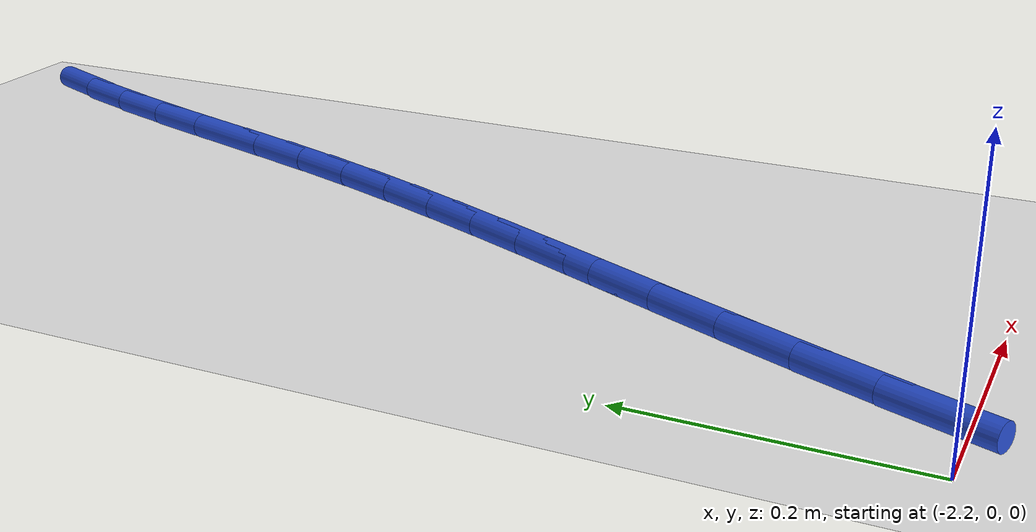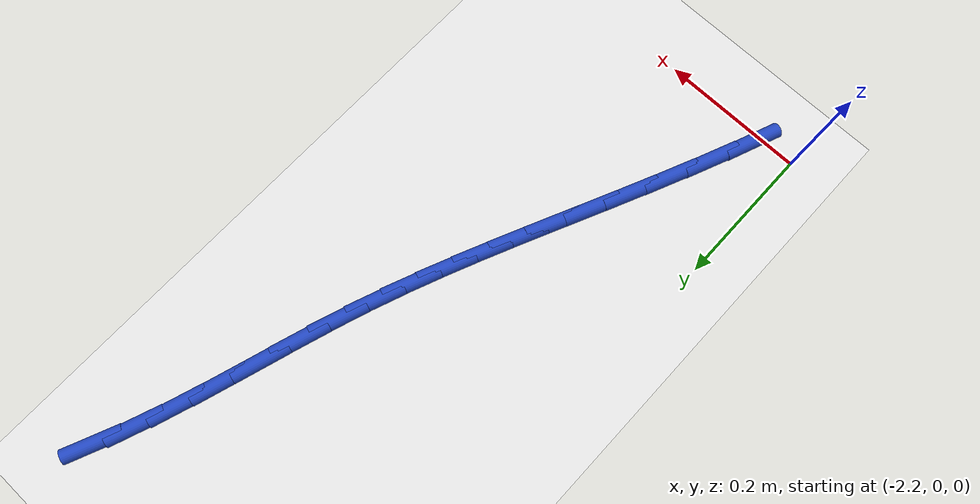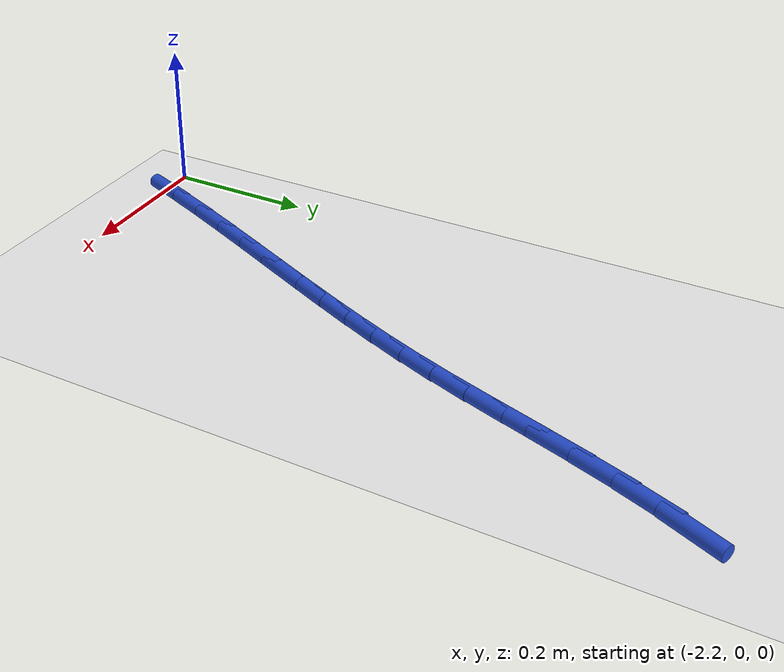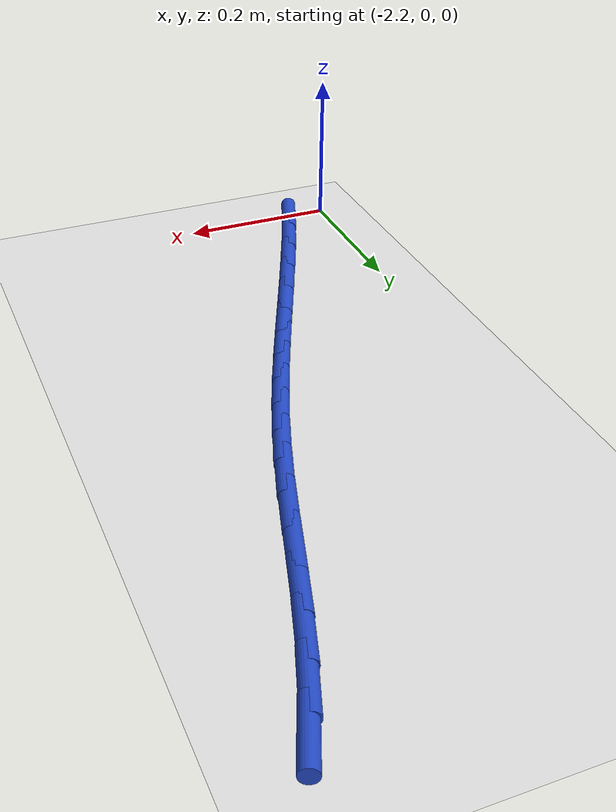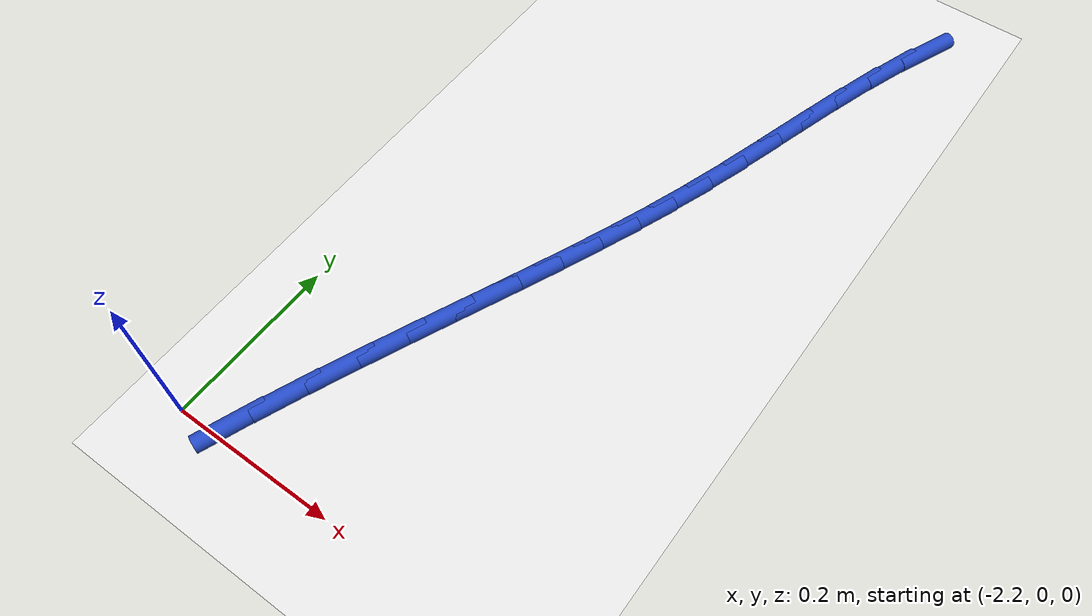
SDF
<sdf version="1.6">
 <world name="default">
  <model name="ground_plane">
   <static>1</static>
   <link name="link">
    <collision name="collision">
     <geometry><plane><normal>0 0 1</normal><size>100 100</size></plane></geometry>
     <surface><friction><ode><mu>100</mu><mu2>50</mu2></ode></friction></surface>
    </collision>
    <visual name="visual">
     <cast_shadows>0</cast_shadows>
     <geometry><plane><normal>0 0 1</normal><size>100 100</size></plane></geometry>
     <material>
      <script><uri>file://media/materials/scripts/gazebo.material</uri><name>Gazebo/WhiteGlow</name></script>
     </material>
    </visual>
   </link>
  </model>
  <model name="line">
   <link name="link_52">
    <pose>-1.8046861865490258 0.8794179401751617 0.01 0 1.57 1.1713723848398787</pose>
    <collision name="collision">
     <geometry><cylinder><radius>0.01</radius><length>0.08</length></cylinder></geometry>
    </collision>
    <visual name="visual">
     <material>
      <script><name>Gazebo/Blue</name><uri>file://media/materials/scripts/gazebo.material</uri></script>
     </material>
     <geometry><cylinder><radius>0.01</radius><length>0.08</length></cylinder></geometry>
    </visual>
   </link>
   <link name="link_53">
    <pose>-1.8260009024651807 0.8289228178139051 0.01 0 1.57 1.2199778294461034</pose>
    <collision name="collision">
     <geometry><cylinder><radius>0.01</radius><length>0.08</length></cylinder></geometry>
    </collision>
    <visual name="visual">
     <material>
      <script><name>Gazebo/Blue</name><uri>file://media/materials/scripts/gazebo.material</uri></script>
     </material>
     <geometry><cylinder><radius>0.01</radius><length>0.08</length></cylinder></geometry>
    </visual>
   </link>
   <link name="link_54">
    <pose>-1.8452836291552381 0.7762314853788934 0.01 0 1.57 1.2521281128866246</pose>
    <collision name="collision">
     <geometry><cylinder><radius>0.01</radius><length>0.08</length></cylinder></geometry>
    </collision>
    <visual name="visual">
     <material>
      <script><name>Gazebo/Blue</name><uri>file://media/materials/scripts/gazebo.material</uri></script>
     </material>
     <geometry><cylinder><radius>0.01</radius><length>0.08</length></cylinder></geometry>
    </visual>
   </link>
   <link name="link_55">
    <pose>-1.8630707976467238 0.7223165999393505 0.01 0 1.57 1.2695734866179076</pose>
    <collision name="collision">
     <geometry><cylinder><radius>0.01</radius><length>0.08</length></cylinder></geometry>
    </collision>
    <visual name="visual">
     <material>
      <script><name>Gazebo/Blue</name><uri>file://media/materials/scripts/gazebo.material</uri></script>
     </material>
     <geometry><cylinder><radius>0.01</radius><length>0.08</length></cylinder></geometry>
    </visual>
   </link>
   <link name="link_56">
    <pose>-1.879898838967165 0.6681508185645015 0.01 0 1.57 1.2729636206471848</pose>
    <collision name="collision">
     <geometry><cylinder><radius>0.01</radius><length>0.08</length></cylinder></geometry>
    </collision>
    <visual name="visual">
     <material>
      <script><name>Gazebo/Blue</name><uri>file://media/materials/scripts/gazebo.material</uri></script>
     </material>
     <geometry><cylinder><radius>0.01</radius><length>0.08</length></cylinder></geometry>
    </visual>
   </link>
   <link name="link_57">
    <pose>-1.8963041841440882 0.6147067983235692 0.01 0 1.57 1.26180859358023</pose>
    <collision name="collision">
     <geometry><cylinder><radius>0.01</radius><length>0.08</length></cylinder></geometry>
    </collision>
    <visual name="visual">
     <material>
      <script><name>Gazebo/Blue</name><uri>file://media/materials/scripts/gazebo.material</uri></script>
     </material>
     <geometry><cylinder><radius>0.01</radius><length>0.08</length></cylinder></geometry>
    </visual>
   </link>
   <link name="link_58">
    <pose>-1.9128232642050205 0.5629571962857793 0.01 0 1.57 1.2374722600116919</pose>
    <collision name="collision">
     <geometry><cylinder><radius>0.01</radius><length>0.08</length></cylinder></geometry>
    </collision>
    <visual name="visual">
     <material>
      <script><name>Gazebo/Blue</name><uri>file://media/materials/scripts/gazebo.material</uri></script>
     </material>
     <geometry><cylinder><radius>0.01</radius><length>0.08</length></cylinder></geometry>
    </visual>
   </link>
   <link name="link_59">
    <pose>-1.9299136742801908 0.5135976378696189 0.01 0 1.57 1.2117654814617043</pose>
    <collision name="collision">
     <geometry><cylinder><radius>0.01</radius><length>0.08</length></cylinder></geometry>
    </collision>
    <visual name="visual">
     <material>
      <script><name>Gazebo/Blue</name><uri>file://media/materials/scripts/gazebo.material</uri></script>
     </material>
     <geometry><cylinder><radius>0.01</radius><length>0.08</length></cylinder></geometry>
    </visual>
   </link>
   <link name="link_60">
    <pose>-1.9477083192489788 0.46618277744797815 0.01 0 1.57 1.189086762597426</pose>
    <collision name="collision">
     <geometry><cylinder><radius>0.01</radius><length>0.08</length></cylinder></geometry>
    </collision>
    <visual name="visual">
     <material>
      <script><name>Gazebo/Blue</name><uri>file://media/materials/scripts/gazebo.material</uri></script>
     </material>
     <geometry><cylinder><radius>0.01</radius><length>0.08</length></cylinder></geometry>
    </visual>
   </link>
   <link name="link_61">
    <pose>-1.9662565259195908 0.4199735736051998 0.01 0 1.57 1.170584200995082</pose>
    <collision name="collision">
     <geometry><cylinder><radius>0.01</radius><length>0.08</length></cylinder></geometry>
    </collision>
    <visual name="visual">
     <material>
      <script><name>Gazebo/Blue</name><uri>file://media/materials/scripts/gazebo.material</uri></script>
     </material>
     <geometry><cylinder><radius>0.01</radius><length>0.08</length></cylinder></geometry>
    </visual>
   </link>
   <link name="link_62">
    <pose>-1.9856076210253153 0.3742309846623678 0.01 0 1.57 1.1570780334080306</pose>
    <collision name="collision">
     <geometry><cylinder><radius>0.01</radius><length>0.08</length></cylinder></geometry>
    </collision>
    <visual name="visual">
     <material>
      <script><name>Gazebo/Blue</name><uri>file://media/materials/scripts/gazebo.material</uri></script>
     </material>
     <geometry><cylinder><radius>0.01</radius><length>0.08</length></cylinder></geometry>
    </visual>
   </link>
   <link name="link_63">
    <pose>-2.0058109312994414 0.32821596894056543 0.01 0 1.57 1.148951989883893</pose>
    <collision name="collision">
     <geometry><cylinder><radius>0.01</radius><length>0.08</length></cylinder></geometry>
    </collision>
    <visual name="visual">
     <material>
      <script><name>Gazebo/Blue</name><uri>file://media/materials/scripts/gazebo.material</uri></script>
     </material>
     <geometry><cylinder><radius>0.01</radius><length>0.08</length></cylinder></geometry>
    </visual>
   </link>
   <link name="link_64">
    <pose>-2.02691578347526 0.28118948476087713 0.01 0 1.57 1.1461354242587467</pose>
    <collision name="collision">
     <geometry><cylinder><radius>0.01</radius><length>0.08</length></cylinder></geometry>
    </collision>
    <visual name="visual">
     <material>
      <script><name>Gazebo/Blue</name><uri>file://media/materials/scripts/gazebo.material</uri></script>
     </material>
     <geometry><cylinder><radius>0.01</radius><length>0.08</length></cylinder></geometry>
    </visual>
   </link>
   <link name="link_65">
    <pose>-2.048971504286057 0.232412490444386 0.01 0 1.57 1.1482186597870714</pose>
    <collision name="collision">
     <geometry><cylinder><radius>0.01</radius><length>0.08</length></cylinder></geometry>
    </collision>
    <visual name="visual">
     <material>
      <script><name>Gazebo/Blue</name><uri>file://media/materials/scripts/gazebo.material</uri></script>
     </material>
     <geometry><cylinder><radius>0.01</radius><length>0.08</length></cylinder></geometry>
    </visual>
   </link>
   <link name="link_66">
    <pose>-2.071974319836792 0.1812573632136611 0.01 0 1.57 1.1549253689024073</pose>
    <collision name="collision">
     <geometry><cylinder><radius>0.01</radius><length>0.08</length></cylinder></geometry>
    </collision>
    <visual name="visual">
     <material>
      <script><name>Gazebo/Blue</name><uri>file://media/materials/scripts/gazebo.material</uri></script>
     </material>
     <geometry><cylinder><radius>0.01</radius><length>0.08</length></cylinder></geometry>
    </visual>
   </link>
   <link name="link_67">
    <pose>-2.0955508211085165 0.12787207072681298 0.01 0 1.57 1.16607057548934</pose>
    <collision name="collision">
     <geometry><cylinder><radius>0.01</radius><length>0.08</length></cylinder></geometry>
    </collision>
    <visual name="visual">
     <material>
      <script><name>Gazebo/Blue</name><uri>file://media/materials/scripts/gazebo.material</uri></script>
     </material>
     <geometry><cylinder><radius>0.01</radius><length>0.08</length></cylinder></geometry>
    </visual>
   </link>
   <link name="link_68">
    <pose>-2.119170450982917 0.07273431814510166 0.01 0 1.57 1.18165367795067</pose>
    <collision name="collision">
     <geometry><cylinder><radius>0.01</radius><length>0.08</length></cylinder></geometry>
    </collision>
    <visual name="visual">
     <material>
      <script><name>Gazebo/Blue</name><uri>file://media/materials/scripts/gazebo.material</uri></script>
     </material>
     <geometry><cylinder><radius>0.01</radius><length>0.08</length></cylinder></geometry>
    </visual>
   </link>
   <link name="link_69">
    <pose>-2.142302076447644 0.016323019004954198 0.01 0 1.57 1.2019453493848802</pose>
    <collision name="collision">
     <geometry><cylinder><radius>0.01</radius><length>0.08</length></cylinder></geometry>
    </collision>
    <visual name="visual">
     <material>
      <script><name>Gazebo/Blue</name><uri>file://media/materials/scripts/gazebo.material</uri></script>
     </material>
     <geometry><cylinder><radius>0.01</radius><length>0.08</length></cylinder></geometry>
    </visual>
   </link>
  </model>
 </world>
</sdf>
